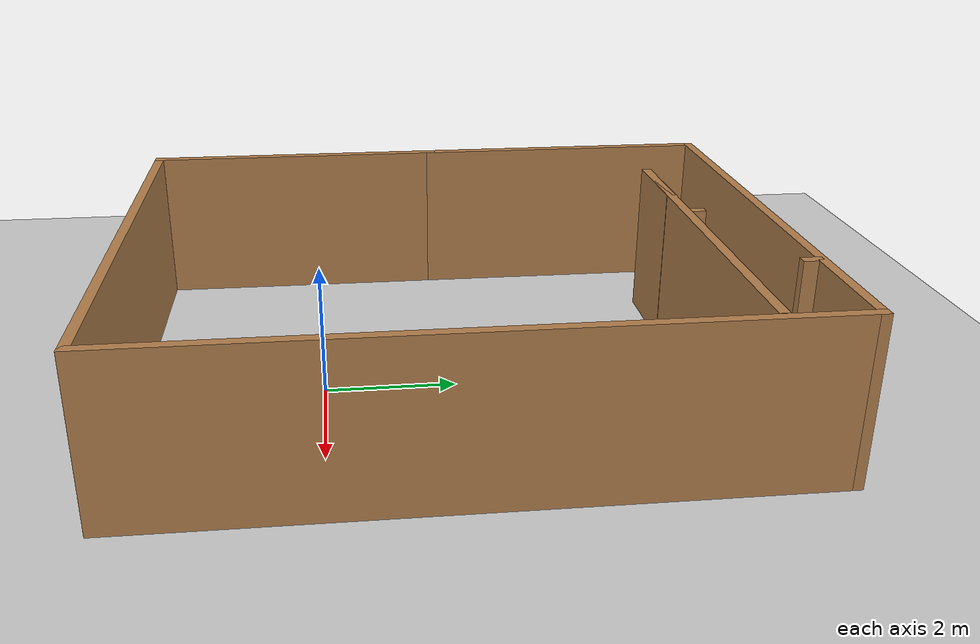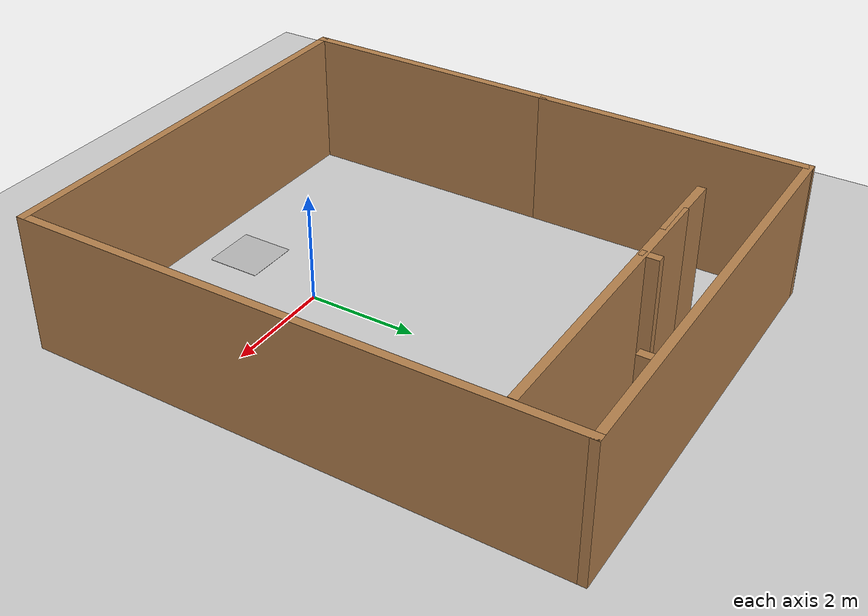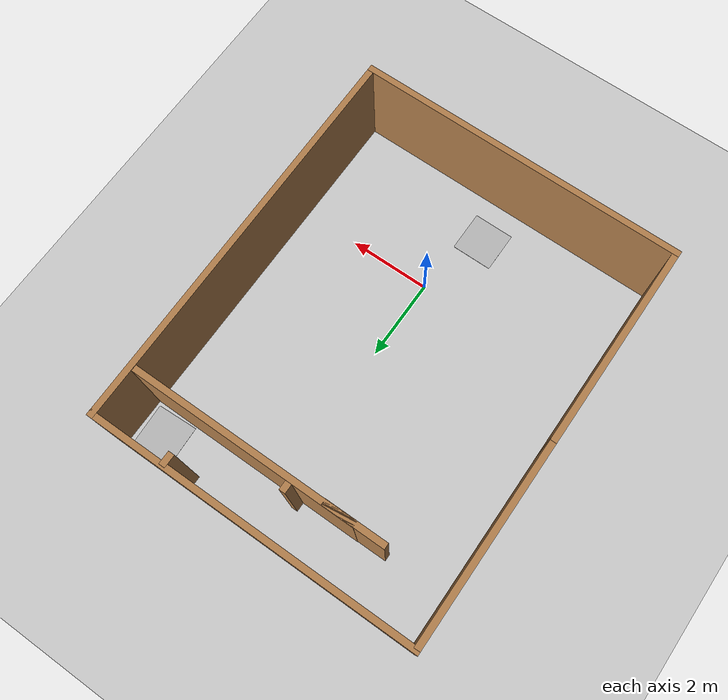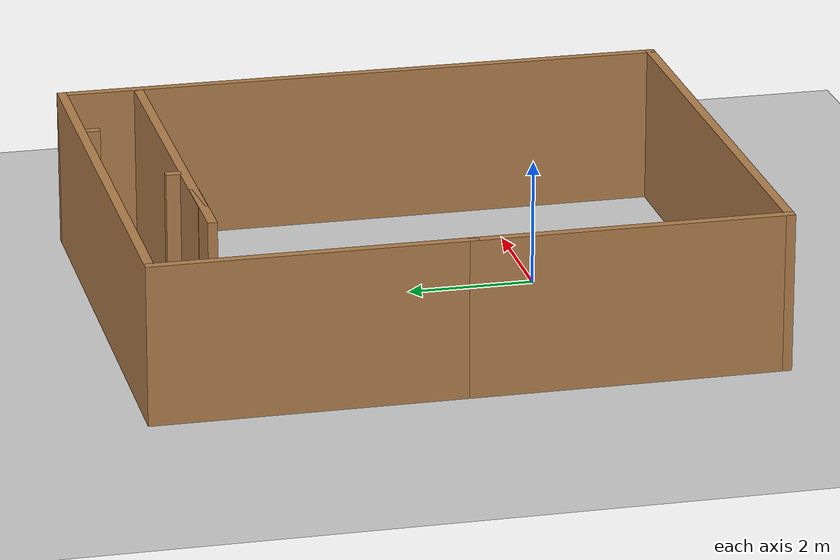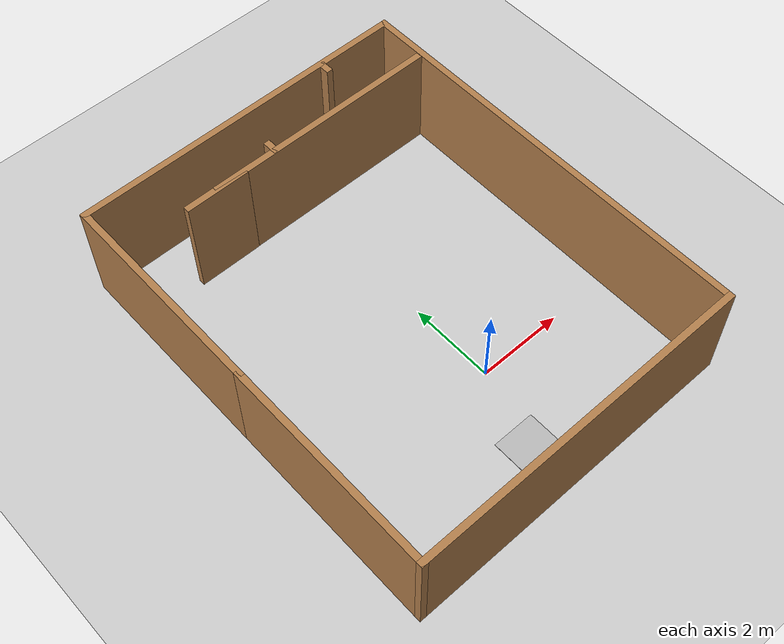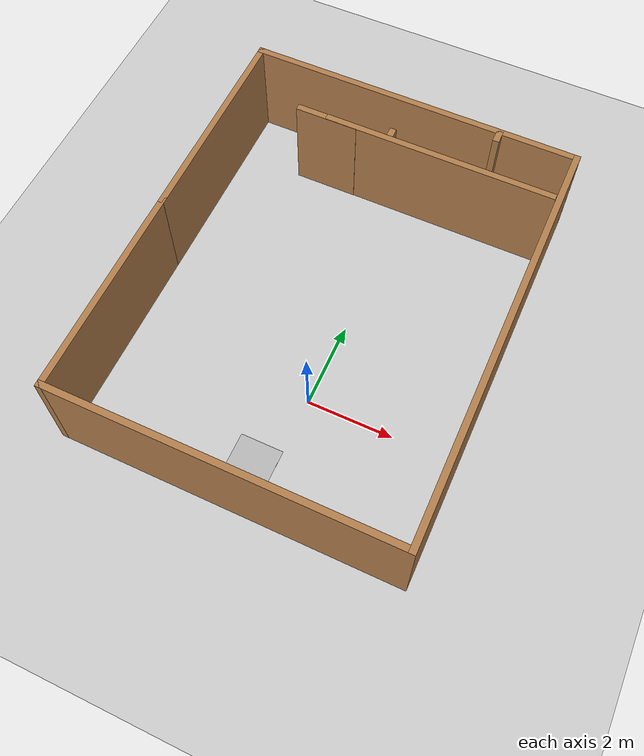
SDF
<sdf version="1.7">
 <world name="default">
  <light name="sun" type="directional">
   <pose>0 0 10 0 -0 0</pose>
   <diffuse>0.8 0.8 0.8 1</diffuse>
   <specular>0.2 0.2 0.2 1</specular>
   <attenuation>
    <range>1000</range>
    <constant>0.9</constant>
    <linear>0.01</linear>
    <quadratic>0.001</quadratic>
   </attenuation>
   <direction>-0.5 0.1 -0.9</direction>
   <spot><inner_angle>0</inner_angle><outer_angle>0</outer_angle><falloff>0</falloff></spot>
  </light>
  <model name="ground_plane">
   <static>1</static>
   <link name="link">
    <collision name="collision">
     <geometry><plane><normal>0 0 1</normal><size>100 100</size></plane></geometry>
     <surface>
      <contact><collide_bitmask>65535</collide_bitmask></contact>
      <friction><ode><mu>100</mu><mu2>50</mu2></ode></friction>
     </surface>
    </collision>
    <visual name="visual">
     <cast_shadows>0</cast_shadows>
     <geometry><plane><normal>0 0 1</normal><size>100 100</size></plane></geometry>
     <material>
      <script><uri>file://media/materials/scripts/gazebo.material</uri><name>Gazebo/Grey</name></script>
     </material>
     <receive_shadows>1</receive_shadows>
     <render_order>0</render_order>
    </visual>
   </link>
  </model>
  <gravity>0 0 -9.8</gravity>
  <magnetic_field>6e-06 2.3e-05 -4.2e-05</magnetic_field>
  <atmosphere type="adiabatic"/>
  <physics type="ode">
   <max_step_size>0.001</max_step_size>
   <real_time_factor>1</real_time_factor>
   <real_time_update_rate>1000</real_time_update_rate>
  </physics>
  <scene>
   <ambient>0.4 0.4 0.4 1</ambient>
   <background>0.7 0.7 0.7 1</background>
   <shadows>1</shadows>
   <fog><type>none</type></fog>
  </scene>
  <spherical_coordinates>
   <surface_model>EARTH_WGS84</surface_model>
   <latitude_deg>0</latitude_deg>
   <longitude_deg>0</longitude_deg>
   <elevation>0</elevation>
   <heading_deg>0</heading_deg>
  </spherical_coordinates>
  <model name="toudi2">
   <pose>-0.485 2.03479 0 0 -0 0</pose>
   <link name="Wall_1">
    <collision name="Wall_1_Collision">
     <geometry><box><size>8 0.15 2.5</size></box></geometry>
     <pose>0 0 1.25 0 -0 0</pose>
    </collision>
    <visual name="Wall_1_Visual">
     <pose>0 0 1.25 0 -0 0</pose>
     <geometry><box><size>8 0.15 2.5</size></box></geometry>
     <material>
      <script><uri>file://media/materials/scripts/gazebo.material</uri><name>Gazebo/Wood</name></script>
      <ambient>1 1 1 1</ambient>
     </material>
     <receive_shadows>1</receive_shadows>
     <render_order>1</render_order>
     <meta><layer>0</layer></meta>
    </visual>
    <pose>-0 -4.86479 0 0 -0 3.14159</pose>
   </link>
   <link name="Wall_11">
    <collision name="Wall_11_Collision">
     <geometry><box><size>9.85 0.15 2.5</size></box></geometry>
     <pose>0 0 1.25 0 -0 0</pose>
    </collision>
    <visual name="Wall_11_Visual">
     <pose>0 0 1.25 0 -0 0</pose>
     <geometry><box><size>9.85 0.15 2.5</size></box></geometry>
     <material>
      <script><uri>file://media/materials/scripts/gazebo.material</uri><name>Gazebo/Wood</name></script>
      <ambient>1 1 1 1</ambient>
     </material>
     <receive_shadows>1</receive_shadows>
     <render_order>1</render_order>
     <meta><layer>0</layer></meta>
    </visual>
    <pose>3.925 -0.01479 0 0 -0 1.5708</pose>
   </link>
   <link name="Wall_13">
    <collision name="Wall_13_Collision">
     <geometry><box><size>5.5 0.15 2.5</size></box></geometry>
     <pose>0 0 1.25 0 -0 0</pose>
    </collision>
    <visual name="Wall_13_Visual">
     <pose>0 0 1.25 0 -0 0</pose>
     <geometry><box><size>5.5 0.15 2.5</size></box></geometry>
     <material>
      <script><uri>file://media/materials/scripts/gazebo.material</uri><name>Gazebo/Wood</name></script>
      <ambient>1 1 1 1</ambient>
     </material>
     <receive_shadows>1</receive_shadows>
     <render_order>1</render_order>
     <meta><layer>0</layer></meta>
    </visual>
    <pose>1.09114 3.61479 0 0 -0 3.14159</pose>
   </link>
   <link name="Wall_4">
    <collision name="Wall_4_Collision">
     <geometry><box><size>5 0.15 2.5</size></box></geometry>
     <pose>0 0 1.25 0 -0 0</pose>
    </collision>
    <visual name="Wall_4_Visual">
     <pose>0 0 1.25 0 -0 0</pose>
     <geometry><box><size>5 0.15 2.5</size></box></geometry>
     <material>
      <script><uri>file://media/materials/scripts/gazebo.material</uri><name>Gazebo/Wood</name></script>
      <ambient>1 1 1 1</ambient>
     </material>
     <receive_shadows>1</receive_shadows>
     <render_order>1</render_order>
     <meta><layer>0</layer></meta>
    </visual>
    <pose>-3.925 -2.43979 0 0 -0 1.5708</pose>
   </link>
   <link name="Wall_6">
    <collision name="Wall_6_Collision">
     <geometry><box><size>5 0.15 2.5</size></box></geometry>
     <pose>0 0 1.25 0 -0 0</pose>
    </collision>
    <visual name="Wall_6_Visual">
     <pose>0 0 1.25 0 -0 0</pose>
     <geometry><box><size>5 0.15 2.5</size></box></geometry>
     <material>
      <script><uri>file://media/materials/scripts/gazebo.material</uri><name>Gazebo/Wood</name></script>
      <ambient>1 1 1 1</ambient>
     </material>
     <receive_shadows>1</receive_shadows>
     <render_order>1</render_order>
     <meta><layer>0</layer></meta>
    </visual>
    <pose>-3.925 2.41021 0 0 -0 1.5708</pose>
   </link>
   <link name="Wall_9">
    <collision name="Wall_9_Collision">
     <geometry><box><size>8 0.15 2.5</size></box></geometry>
     <pose>0 0 1.25 0 -0 0</pose>
    </collision>
    <visual name="Wall_9_Visual">
     <pose>0 0 1.25 0 -0 0</pose>
     <geometry><box><size>8 0.15 2.5</size></box></geometry>
     <material>
      <script><uri>file://media/materials/scripts/gazebo.material</uri><name>Gazebo/Wood</name></script>
      <ambient>1 1 1 1</ambient>
     </material>
     <receive_shadows>1</receive_shadows>
     <render_order>1</render_order>
     <meta><layer>0</layer></meta>
    </visual>
    <pose>-0 4.83521 0 0 -0 0</pose>
   </link>
   <static>1</static>
  </model>
  <include>
   <uri>model://landing_h</uri>
   <name>landing_h</name>
   <pose>-0.493412 -1.77269 0 0 -0 1.57018</pose>
  </include>
  <include>
   <uri>model://landing_h</uri>
   <name>landing_h_clone</name>
   <pose>2.78088 6.28453 0 0 -0 -3.09751</pose>
  </include>
  <model name="Wall_14">
   <pose>-2.12358 5.64223 0 0 0 -3.13988</pose>
   <static>1</static>
   <link name="link">
    <collision name="collision">
     <geometry><box><size>1.5 0.15 2.5</size></box></geometry>
     <pose>0 0 1.25 0 -0 0</pose>
    </collision>
    <visual name="visual">
     <pose>0 0 1.25 0 -0 0</pose>
     <geometry><box><size>1.5 0.15 2.5</size></box></geometry>
     <material>
      <script><uri>file://media/materials/scripts/gazebo.material</uri><name>Gazebo/Wood</name></script>
      <ambient>1 1 1 1</ambient>
     </material>
     <receive_shadows>1</receive_shadows>
     <render_order>1</render_order>
    </visual>
   </link>
  </model>
  <model name="Wall_20">
   <pose>-0.605415000000 5.771029862256 0.000000000000 0.000000000000 -0.000000000000 1.570800000000</pose>
   <static>1</static>
   <link name="link">
    <collision name="collision">
     <geometry><box><size>0.347939724510 0.150000000000 2.500000000000</size></box></geometry>
     <pose>0 0 1.25 0 -0 0</pose>
    </collision>
    <visual name="visual">
     <geometry><box><size>0.347939724510 0.150000000000 2.500000000000</size></box></geometry>
     <pose>0 0 1.25 0 -0 0</pose>
     <material>
      <script><uri>file://media/materials/scripts/gazebo.material</uri><name>Gazebo/Wood</name></script>
      <ambient>1 1 1 1</ambient>
     </material>
     <receive_shadows>1</receive_shadows>
    </visual>
   </link>
  </model>
  <model name="Wall_22">
   <pose>1.629610000000 6.730658786430 0.000000000000 0.000000000000 -0.000000000000 1.570800000000</pose>
   <static>1</static>
   <link name="link">
    <collision name="collision">
     <geometry><box><size>0.312142427138 0.150000000000 2.500000000000</size></box></geometry>
     <pose>0 0 1.25 0 -0 0</pose>
    </collision>
    <visual name="visual">
     <geometry><box><size>0.312142427138 0.150000000000 2.500000000000</size></box></geometry>
     <pose>0 0 1.25 0 -0 0</pose>
     <material>
      <script><uri>file://media/materials/scripts/gazebo.material</uri><name>Gazebo/Wood</name></script>
      <ambient>1 1 1 1</ambient>
     </material>
     <receive_shadows>1</receive_shadows>
    </visual>
   </link>
  </model>
 </world>
</sdf>

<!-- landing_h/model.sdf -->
<sdf version="1.7">
  <model name="landing_h">
    <static>true</static>
    <link name="link">
      <pose>0 0 0.0025 0 0 0</pose>
      <collision name="collision">
        <geometry>
          <box><size>1.0 1.0 0.005</size></box>
        </geometry>
      </collision>
      <visual name="visual">
        <geometry>
          <box><size>1.0 1.0 0.005</size></box>
        </geometry>
        <material>
          <script>
            <uri>model://landing_h/materials/scripts/</uri>
            <uri>model://landing_h/materials/textures/</uri>
            <name>Mark/LandingH</name>
          </script>
        </material>
        <cast_shadows>true</cast_shadows>
        <receive_shadows>true</receive_shadows>
      </visual>
    </link>
  </model>
</sdf>
